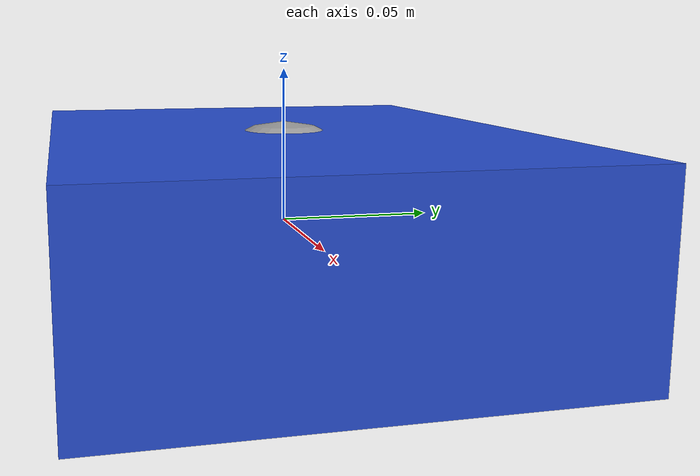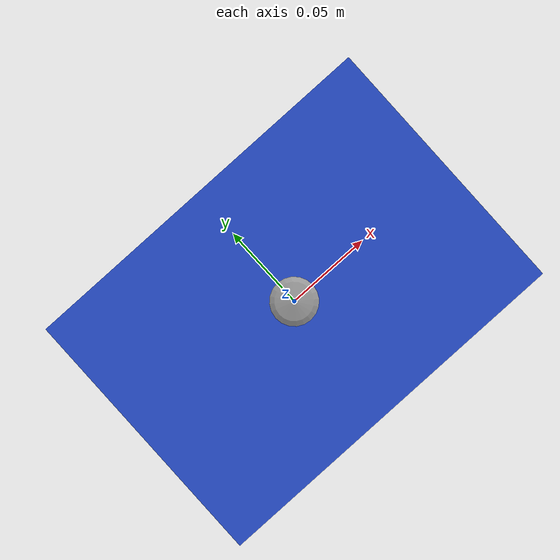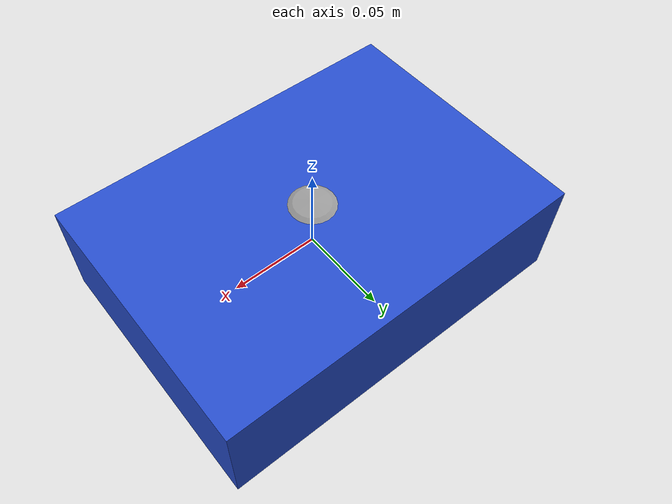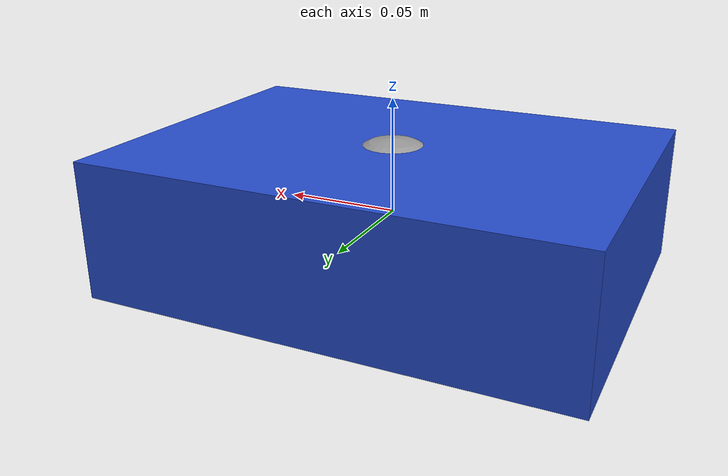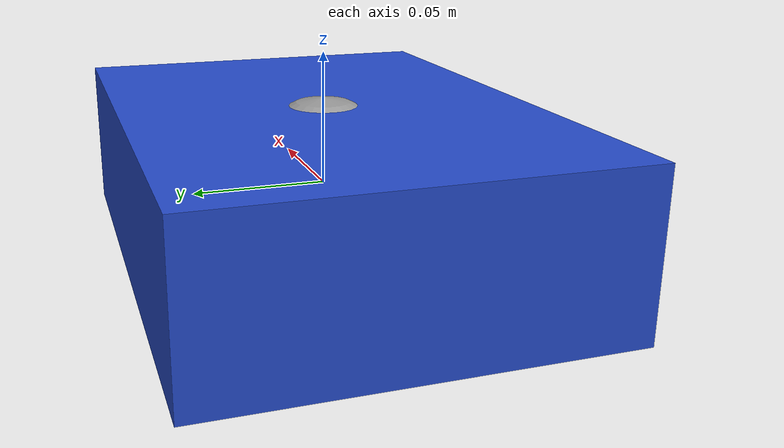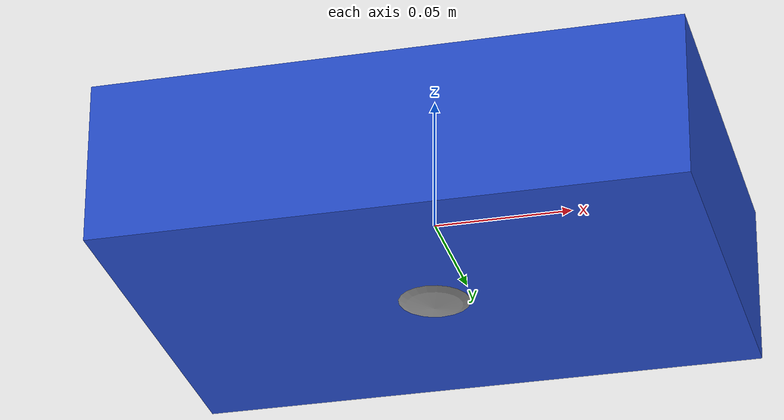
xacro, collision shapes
<?xml version="1.0"?>
<robot name="my_robot" xmlns:xacro="http://www.ros.org/wiki/xacro">

  <!-- Parámetros generales -->
  <xacro:arg name="package_name" default="my_robot_description"/>
  <xacro:arg name="mesh_dir" default="meshes"/>

  <!-- Escala global del modelo CAD exportado desde SolidWorks -->
  <xacro:property name="global_scale" value="0.02"/>

  <!-- Cuerpo del Tanque -->
  <xacro:property name="base_mesh" value="tank_body_max.stl"/>
  <xacro:property name="base_scale" value="${global_scale} ${global_scale} ${global_scale}"/>
  <xacro:property name="base_visual_xyz" value="0 0 0"/>
  <xacro:property name="base_visual_rpy" value="0 0 0"/>

  <!-- Torreta -->
  <xacro:property name="tank_head_mesh" value="tank_head_max.stl"/>
  <xacro:property name="tank_head_scale" value="${global_scale} ${global_scale} ${global_scale}"/>
  <xacro:property name="tank_head_xyz" value="0 0 ${25 * global_scale}"/>
  <xacro:property name="tank_head_rpy" value="0 0 0"/>
  <xacro:property name="tank_head_axis" value="0 0 1"/>
  <xacro:property name="tank_head_visual_xyz" value="0 0 ${-25 * global_scale}"/>
  <xacro:property name="tank_head_visual_rpy" value="0 0 0"/>

  <!-- Canon -->
  <xacro:property name="tank_gun_mesh" value="tank_gun_max.stl"/>
  <xacro:property name="tank_gun_scale" value="${global_scale} ${global_scale} ${global_scale}"/>
  <xacro:property name="tank_gun_xyz" value="0 ${-19 * global_scale} ${5 * global_scale}"/>
  <xacro:property name="tank_gun_rpy" value="0 0 0"/>
  <xacro:property name="tank_gun_axis" value="1 0 0"/>
  <xacro:property name="tank_gun_visual_xyz" value="0 ${19 * global_scale} ${-30 * global_scale}"/>
  <xacro:property name="tank_gun_visual_rpy" value="0 0 0"/>

  <!-- Macro Unificada para Links (Evita repetir código de forma errónea) -->
  <!-- No use las o_xyz y o_rpy, habria que ver que fallo -->

  <xacro:macro name="mesh_link" params="name mesh scale v_xyz v_rpy o_xyz o_rpy material mass:=0.00000001 collision_type width:=0.00000001 height:=0.00000001 depth:=0.00000001 radius:=0.00000001">
    <link name="${name}">
      <visual>
        <origin xyz="${v_xyz}" rpy="${v_rpy}"/>
        <geometry>
          <mesh filename="package://$(arg package_name)/$(arg mesh_dir)/${mesh}" scale="${scale}"/>
        </geometry>
        <material name="${material}"/>
      </visual>

      <!-- Elemento Inercial (Asume siempre forma de caja para el cálculo) Creo que quedaron mal puestos los depth y height pero ya fue -->
      <inertial>
        <origin xyz="${v_xyz}" rpy="${v_rpy}"/>
        <mass value="${mass}"/>
        <inertia
          ixx="${(1/12) * mass * (height*height + depth*depth)}" ixy="0.0" ixz="0.0"
          iyy="${(1/12) * mass * (width*width + depth*depth)}" iyz="0.0"
          izz="${(1/12) * mass * (width*width + height*height)}" />
      </inertial>

      <!-- Elemento de Colisión Dinámico -->
      <collision>
        <origin xyz="${v_xyz}" rpy="${v_rpy}"/>
        <geometry>

          <!-- Opción 1: Si el tipo es 'box' -->
          <xacro:if value="${collision_type == 'box'}">
            <box size="${width} ${height} ${depth}"/>
          </xacro:if>

          <!-- Opción 2: Si el tipo es 'sphere' -->
          <xacro:if value="${collision_type == 'sphere'}">
            <sphere radius="${radius}"/>
          </xacro:if>

        </geometry>
      </collision>

    </link>
  </xacro:macro>

  <!-- Instancias de Links -->

  <link name="base_footprint"/>

  <xacro:mesh_link
    name="base_link"
    mesh="${base_mesh}"
    scale="${base_scale}"
    v_xyz="${base_visual_xyz}"
    v_rpy="${base_visual_rpy}"
    o_xyz="${base_visual_xyz}"
    o_rpy="${base_visual_rpy}"
    material="blue"
    mass="0.12"
    collision_type="box"
    width="0.21"
    height="0.15"
    depth="0.06"/>

  <xacro:mesh_link
    name="tank_head_link"
    mesh="${tank_head_mesh}"
    scale="${tank_head_scale}"
    v_xyz="${tank_head_visual_xyz}"
    v_rpy="${tank_head_visual_rpy}"
    o_xyz="${tank_head_xyz}"
    o_rpy="${tank_head_rpy}"
    material="grey"
    mass="0.1403"
    collision_type="sphere"
    width="0.066"
    height="0.066"
    depth="0.025"
    radius="0.033"/>

  <xacro:mesh_link
    name="tank_gun_link"
    mesh="${tank_gun_mesh}"
    scale="${tank_gun_scale}"
    v_xyz="${tank_gun_visual_xyz}"
    v_rpy="${tank_gun_visual_rpy}"
    o_xyz="${tank_gun_xyz}"
    o_rpy="${tank_gun_rpy}"
    material="grey"
    mass="0.1403"
    collision_type="sphere"
    width="0.066"
    height="0.066"
    depth="0.025"
    radius="0.033"/>

  <!-- Joints -->

  <joint name="base_joint" type="fixed">
    <parent link="base_footprint"/>
    <child link="base_link"/>
    <origin xyz="0 0 0" rpy="0 0 0"/>
  </joint>

  <joint name="tank_head_joint" type="revolute">
    <origin xyz="${tank_head_xyz}" rpy="${tank_head_rpy}"/>
    <parent link="base_link"/>
    <child link="tank_head_link"/>
    <axis xyz="${tank_head_axis}"/>
    <limit lower="${radians(-160)}" upper="${radians(160)}" effort="9999.0" velocity="9999.0"/>
  </joint>

  <joint name="tank_gun_joint" type="revolute">
    <origin xyz="${tank_gun_xyz}" rpy="${tank_gun_rpy}"/>
    <parent link="tank_head_link"/>
    <child link="tank_gun_link"/>
    <axis xyz="${tank_gun_axis}"/>
    <limit lower="${radians(-15)}" upper="${radians(45)}" effort="9999.0" velocity="9999.0"/>
  </joint>

</robot>
